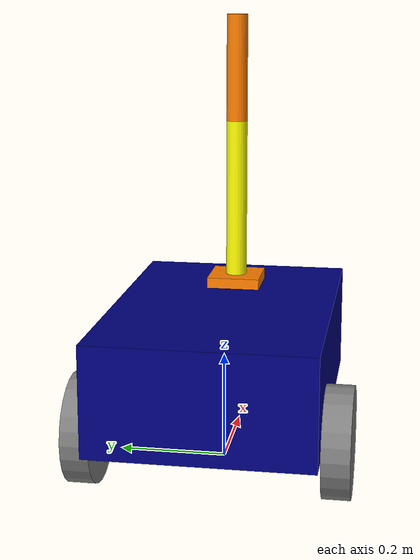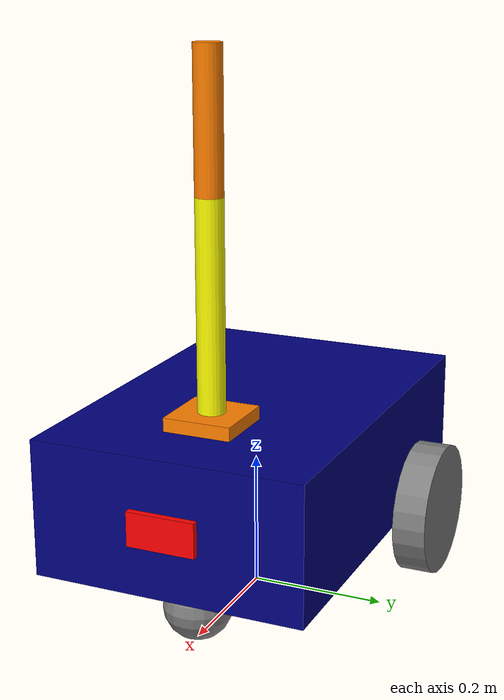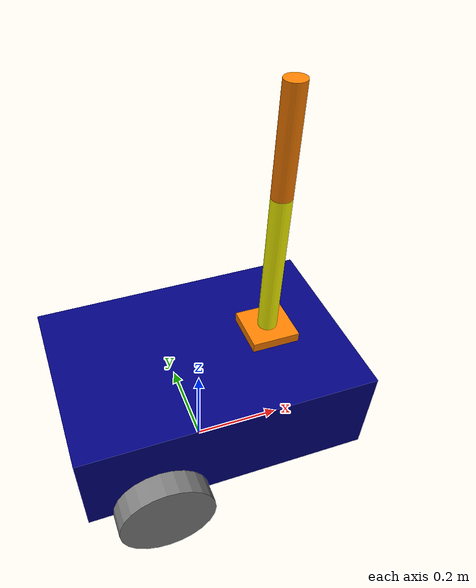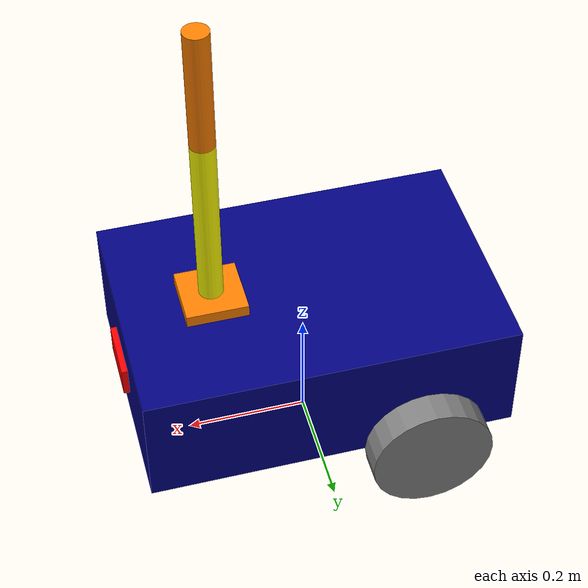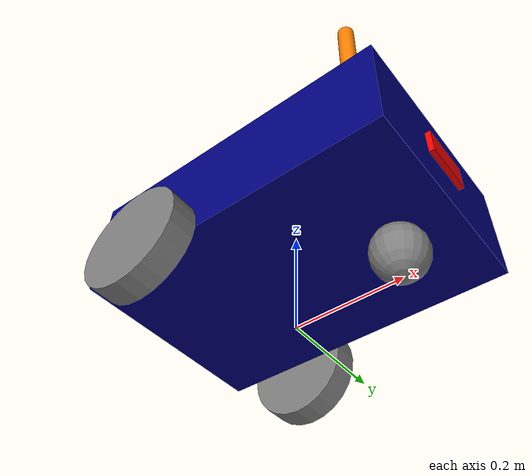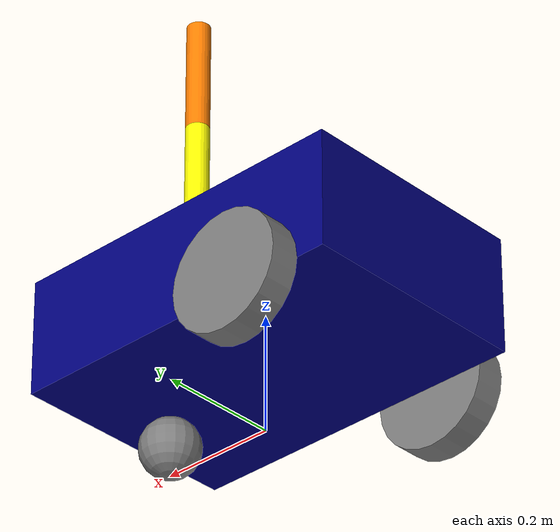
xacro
<?xml version="1.0"?>
<robot name = "my_robot" xmlns:xacro="http://www.ros.org/wiki/xacro">

    <xacro:include filename="common_properties.xacro"/>
    <xacro:include filename="mobile_base.xacro" />
    <xacro:include filename="mobile_base_gazebo.xacro" />
    <xacro:include filename="camera.xacro" />
    <xacro:include filename="robotic_arm.xacro" />

    <joint name="mobile_base_arm_joint" type="fixed">
        <parent link="base_link"/>
        <child link = "arm_base_link" />
        <origin xyz="${base_length/4.0} 0 ${base_height}" rpy="0 0 0" />
    </joint>

</robot>

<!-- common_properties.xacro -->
<robot xmlns:xacro="http://www.ros.org/wiki/xacro">

    <material name = "blue">
        <color rgba = "0 0 0.5 1" />
    </material>

    <material name = "red">
        <color rgba = "1 0 0 1" />
    </material>

    <material name = "pink">
        <color rgba = "1 0 0.5 1" />
    </material>

    <material name = "orange">
        <color rgba = "1 0.5 0 1" />
    </material>

    <material name = "yellow">
        <color rgba = "1 1 0 1" />
    </material>

    <material name = "grey">
        <color rgba = "0.5 0.5 0.5 1" />
    </material>

    <xacro:macro name="box_inertia" params="m l w h xyz rpy">
        <inertial>
            <origin xyz = "${xyz}" rpy = "${rpy}" />
            <mass value="${m}" />
            <inertia ixx="${ (m/12) * (h*h + l*l) }" ixy="0" ixz="0"
                     iyy="${ (m/12) * (w*w + l*l) }" iyz="0"
                     izz="${ (m/12) * (w*w + h*h) }" />
        </inertial>
    </xacro:macro>

    <xacro:macro name="cylinder_inertia" params="m r h xyz rpy">
        <inertial>
            <origin xyz = "${xyz}" rpy = "${rpy}" />
            <mass value="${m}" />
            <inertia ixx="${ (m/12) * (h*h + 3*r*r) }" ixy="0" ixz="0"
                     iyy="${ (m/12) * (h*h + 3*r*r) }" iyz="0"
                     izz="${ (m*r*r) /2 }" />
        </inertial>
    </xacro:macro>

    <xacro:macro name="sphere_inertia" params="m r xyz rpy">
        <inertial>
            <origin xyz = "${xyz}" rpy = "${rpy}" />
            <mass value="${m}"/>
            <inertia ixx="${ (2*m*r*r) /5 }" ixy="0" ixz="0"
                     iyy="${ (2*m*r*r) /5 }" iyz="0"
                     izz="${ (2*m*r*r) /5 }" />
        </inertial>
    </xacro:macro>

</robot>

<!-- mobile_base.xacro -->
<robot xmlns:xacro="http://www.ros.org/wiki/xacro">

    <xacro:property name = "base_length" value="0.6" />
    <xacro:property name = "base_width" value="0.4" />
    <xacro:property name = "base_height" value="0.2" />
    <xacro:property name = "wheel_radius" value="0.1" />
    <xacro:property name = "wheel_length" value="0.05" />

    <link name = "base_footprint"/>

    <link name = "base_link">
        <visual>
            <geometry>
                <box size = "${base_length} ${base_width} ${base_height}" />
            </geometry>
            <origin xyz = "0 0 ${base_height / 2.0}" rpy = "0 0 0" />
            <material name = "blue" />
        </visual>
        <collision>
            <geometry>
                <box size = "${base_length} ${base_width} ${base_height}" />
            </geometry>
            <origin xyz = "0 0 ${base_height / 2.0}" rpy = "0 0 0" />
        </collision>

        <xacro:box_inertia m="5.0" l="${2*base_length}" w="${2*base_width}" h="${2*base_height}"
                           xyz="0 0 ${base_height / 2.0}" rpy=" 0 0 0" />
    </link>

    <xacro:macro name = "wheel_link" params="prefix">
        <link name = "${prefix}_wheel_link">
            <visual>
                <geometry>
                    <cylinder radius = "${wheel_radius}" length = "${wheel_length}" />
                </geometry>
                <origin xyz = "0 0 0" rpy = "${pi / 2.0} 0 0" />
                <material name = "grey" />
            </visual>
            <collision>
                <geometry>
                    <cylinder radius = "${wheel_radius}" length = "${wheel_length}" />
                </geometry>
                <origin xyz = "0 0 0" rpy = "${pi / 2.0} 0 0" />
            </collision>
            <xacro:cylinder_inertia m="1.0" r="${2*wheel_radius}" h="${2*wheel_length}"
                                    xyz = "0 0 0" rpy = "${pi / 2.0} 0 0" />
        </link>
    </xacro:macro>

    <xacro:wheel_link prefix = "right"/>
    <xacro:wheel_link prefix = "left"/>

    <link name = "castor_wheel">
        <visual>
            <geometry>
                <sphere radius = "${wheel_radius / 2.0}" />
            </geometry>
            <origin xyz = "0 0 0" rpy = "0 0 0" />
            <material name = "grey" />
        </visual>
        <collision>
            <geometry>
                <sphere radius = "${wheel_radius / 2.0}" />
            </geometry>
            <origin xyz = "0 0 0" rpy = "0 0 0" />
        </collision>
        <xacro:sphere_inertia m="0.5" r="${2*wheel_radius / 2.0}"
                              xyz = "0 0 0" rpy = "0 0 0" />
    </link>

    <joint name = "base_joint" type = "fixed">
        <parent link = "base_footprint" />
        <child link = "base_link" />
        <origin xyz = "0 0 ${wheel_radius}" rpy = "0 0 0" />
    </joint>

    <joint name = "base_right_wheel_joint" type = "continuous">
        <parent link = "base_link" />
        <child link = "right_wheel_link" />
        <origin xyz = "${-base_length / 4.0} ${(-base_width / 2.0) + (-wheel_length / 2.0)} 0" rpy = "0 0 0" />
        <axis xyz = "0 1 0" />
    </joint>

    <joint name = "base_left_wheel_joint" type = "continuous">
        <parent link = "base_link" />
        <child link = "left_wheel_link" />
        <origin xyz = "${-base_length / 4.0} ${(base_width / 2.0) + (wheel_length / 2.0)} 0" rpy = "0 0 0" />
        <axis xyz = "0 1 0" />
    </joint>

    <joint name = "castor_wheel_joint" type = "fixed">
        <parent link = "base_link" />
        <child link = "castor_wheel" />
        <origin xyz = "${base_length / 3.0} 0 ${-wheel_radius / 2.0}" rpy = "0 0 0" />
    </joint>

</robot>

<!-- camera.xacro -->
<robot xmlns:xacro="http://www.ros.org/wiki/xacro">

    <xacro:property name="camera_length" value="0.01" />
    <xacro:property name="camera_width" value="0.1" />
    <xacro:property name="camera_height" value="0.05" />
    <xacro:property name="camera_length" value="0.01" />

    <link name="camera_link">
        <visual>
            <geometry>
                <box size="${camera_length} ${camera_width} ${camera_height}" />
            </geometry>
            <material name="red"/>
        </visual>
        <collision>
            <geometry>
                <box size="${camera_length} ${camera_width} ${camera_height}" />
            </geometry>
        </collision>
        <xacro:box_inertia m="0.1" l="${camera_length}" w="${camera_width}"
                        h="${camera_height}" xyz="0 0 0" rpy="0 0 0" />
    </link>

    <joint name="base_camera_joint" type="fixed">
        <parent link="base_link"/>
        <child link = "camera_link" />
        <origin xyz="${ (camera_length + base_length) / 2.0} 0 ${base_height / 2.0}" rpy="0 0 0" />
    </joint>

    <!-- for fixing issue between gazebo and opencv camera -->
    <link name="camera_link_optical">
    </link>

    <joint name="camera_optical_joint" type="fixed">
        <origin xyz="0 0 0" rpy="${-pi/2.0} 0 ${-pi/2.0}"/>
        <parent link="camera_link"/>
        <child link="camera_link_optical"/>
    </joint>
    <!-- ""camera link x is pointing forward.. but for opencv z axis is pointing forward..
     hence we fix by using new link and joint"" -->

    <gazebo reference="camera_link">
        <material>Gazebo/Red</material>
        <sensor name="camera_sensor" type="camera">
            <pose>0 0 0 0 0 0</pose>
            <visualize>true</visualize>
            <update_rate>10.0</update_rate>
            <plugin name="camera_controller" filename="libgazebo_ros_camera.so">
                <frame_name>camera_link</frame_name>
            </plugin>
        </sensor>
    </gazebo>
</robot>

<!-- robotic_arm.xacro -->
<robot name="robotic_arm" xmlns:xacro="http://www.ros.org/wiki/xacro">

    <xacro:include filename="arm_gazebo.xacro"/>

    <xacro:property name = "arm_base_length" value="0.1" />
    <xacro:property name = "arm_base_width" value="0.1" />
    <xacro:property name = "arm_base_height" value="0.02" />
    <xacro:property name = "forearm_radius" value="0.02" />
    <xacro:property name = "forearm_length" value="0.3" />
    <xacro:property name = "arm_length" value="0.2" />
    <xacro:property name = "hand_radius" value="0.02" />

    <link name="arm_base_link">
        <visual>
            <geometry>
                <box size="${arm_base_length} ${arm_base_width} ${arm_base_height}"/>
            </geometry>
            <origin xyz="0 0 ${arm_base_height/2.0}" rpy="0 0 0"/>
            <material name = "orange" />
        </visual>
        <collision>
            <geometry>
                <box size="0.1 0.1 0.02"/>
            </geometry>
            <origin xyz="0 0 ${arm_base_height/2.0}" rpy="0 0 0"/>
        </collision>
        <xacro:box_inertia m="0.5" l="${2*arm_base_length}" w="${2*arm_base_width}" h="${2*arm_base_height}"
                           xyz="0 0 ${arm_base_height/2.0}" rpy="0 0 0"/>
    </link>

    <link name="forearm_link">
        <visual>
            <geometry>
                <cylinder radius="${forearm_radius}" length="${forearm_length}" />
            </geometry>
            <origin xyz=" 0 0 ${forearm_length/2.0}" rpy="0 0 0"/>
            <material name = "yellow" />
        </visual>
        <collision>
            <geometry>
                <cylinder radius="0.02" length="${forearm_length}" />
            </geometry>
            <origin xyz=" 0 0 ${forearm_length/2.0}" rpy="0 0 0"/>
        </collision>
        <xacro:cylinder_inertia m="0.3" r="${2*forearm_radius}" h="${2*forearm_length}"
                                xyz="0 0 ${forearm_length/2.0}" rpy = "0 0 0"/>
    </link>

    <link name="hand_link">
        <visual>
            <geometry>
                <cylinder radius="${hand_radius}" length="${arm_length}" />
            </geometry>
            <origin xyz=" 0 0 ${arm_length/2.0}" rpy="0 0 0"/>
            <material name = "orange" />
        </visual>
        <collision>
            <geometry>
                <cylinder radius="${hand_radius}" length="${arm_length}" />
            </geometry>
            <origin xyz=" 0 0 ${arm_length/2.0}" rpy="0 0 0"/>
        </collision>
        <xacro:cylinder_inertia m="0.3" r="${2*hand_radius}" h="${2*arm_length}"
                                xyz=" 0 0 ${arm_length/2.0}" rpy = "0 0 0"/>
    </link>

    <joint name="arm_base_forearm_joint" type="revolute">
        <parent link="arm_base_link"/>
        <child link="forearm_link"/>
        <origin xyz="0 0 ${arm_base_height}" rpy="0 0 0"/>
        <axis xyz = "0 1 0" />
        <limit effort="100" velocity="100" lower="0" upper="${pi/ 2.0}"/>
        <dynamics friction="0.05" damping="0.1"/>
    </joint>

    <joint name="forearm_hand_joint" type="revolute">
        <parent link="forearm_link"/>
        <child link="hand_link"/>
        <origin xyz="0 0 ${forearm_length}" rpy="0 0 0"/>
        <axis xyz = "0 1 0" />
        <limit effort="100" velocity="100" lower="0" upper="${pi/ 2.0}"/>
        <dynamics friction="0.05" damping="0.1"/>
    </joint>

</robot>
